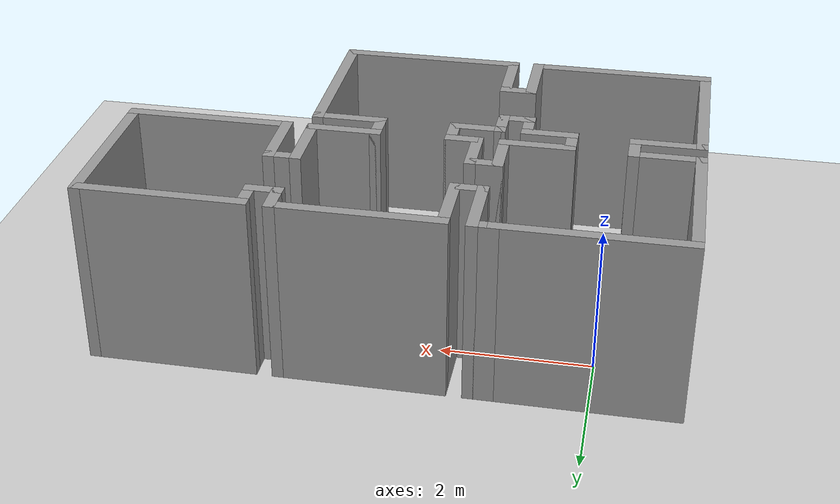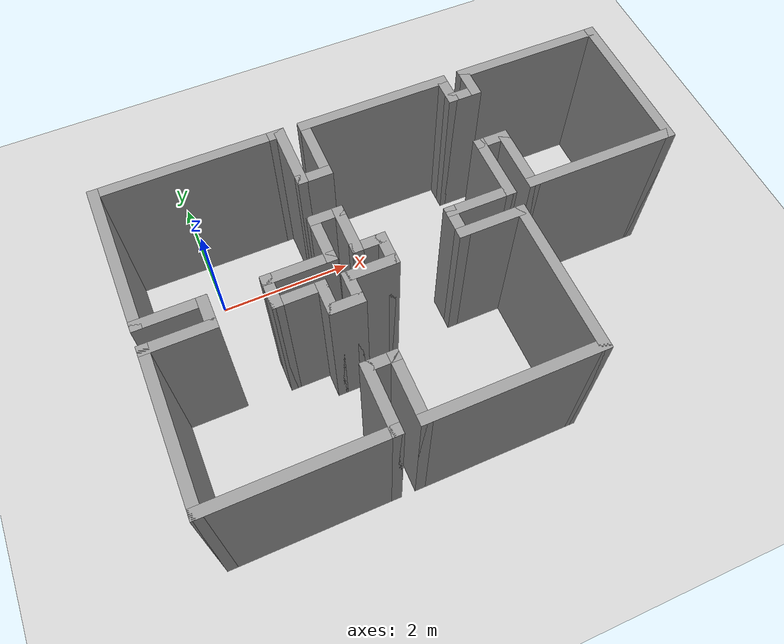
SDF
<sdf version="1.6">
 <world name="default">
  <light name="sun" type="directional">
   <pose>0 0 10 0 -0 0</pose>
   <diffuse>0.8 0.8 0.8 1</diffuse>
   <specular>0.2 0.2 0.2 1</specular>
   <attenuation>
    <range>1000</range>
    <constant>0.9</constant>
    <linear>0.01</linear>
    <quadratic>0.001</quadratic>
   </attenuation>
   <direction>-0.5 0.1 -0.9</direction>
  </light>
  <model name="ground_plane">
   <static>1</static>
   <link name="link">
    <collision name="collision">
     <geometry><plane><normal>0 0 1</normal><size>100 100</size></plane></geometry>
     <surface>
      <contact><collide_bitmask>65535</collide_bitmask></contact>
      <friction><ode><mu>100</mu><mu2>50</mu2></ode></friction>
     </surface>
    </collision>
    <visual name="visual">
     <cast_shadows>0</cast_shadows>
     <geometry><plane><normal>0 0 1</normal><size>100 100</size></plane></geometry>
     <material>
      <script><uri>file://media/materials/scripts/gazebo.material</uri><name>Gazebo/Grey</name></script>
     </material>
    </visual>
   </link>
  </model>
  <gravity>0 0 -9.8</gravity>
  <magnetic_field>6e-06 2.3e-05 -4.2e-05</magnetic_field>
  <atmosphere type="adiabatic"/>
  <physics name="default_physics" default="0" type="ode">
   <max_step_size>0.001</max_step_size>
   <real_time_factor>1</real_time_factor>
   <real_time_update_rate>1000</real_time_update_rate>
  </physics>
  <scene><ambient>0.4 0.4 0.4 1</ambient><background>0.7 0.7 0.7 1</background><shadows>1</shadows></scene>
  <audio><device>default</device></audio>
  <spherical_coordinates>
   <surface_model>EARTH_WGS84</surface_model>
   <latitude_deg>0</latitude_deg>
   <longitude_deg>0</longitude_deg>
   <elevation>0</elevation>
   <heading_deg>0</heading_deg>
  </spherical_coordinates>
  <model name="Rooms5">
   <pose>2.64262 -1.38645 0 0 -0 0</pose>
   <link name="Wall_41">
    <collision name="Wall_41_Collision">
     <geometry><box><size>2.5 0.15 2.5</size></box></geometry>
     <pose>0 0 1.25 0 -0 0</pose>
    </collision>
    <visual name="Wall_41_Visual">
     <pose>0 0 1.25 0 -0 0</pose>
     <geometry><box><size>2.5 0.15 2.5</size></box></geometry>
     <material>
      <script><uri>file://media/materials/scripts/gazebo.material</uri><name>Gazebo/Grey</name></script>
      <ambient>1 1 1 1</ambient>
     </material>
     <meta><layer>0</layer></meta>
    </visual>
    <pose>-2.575 2.275 0 0 -0 3.14159</pose>
   </link>
   <link name="Wall_43">
    <collision name="Wall_43_Collision">
     <geometry><box><size>2.25 0.15 2.5</size></box></geometry>
     <pose>0 0 1.25 0 -0 0</pose>
    </collision>
    <visual name="Wall_43_Visual">
     <pose>0 0 1.25 0 -0 0</pose>
     <geometry><box><size>2.25 0.15 2.5</size></box></geometry>
     <material>
      <script><uri>file://media/materials/scripts/gazebo.material</uri><name>Gazebo/Grey</name></script>
      <ambient>1 1 1 1</ambient>
     </material>
     <meta><layer>0</layer></meta>
    </visual>
    <pose>-3.75 1.225 0 0 -0 -1.5708</pose>
   </link>
   <link name="Wall_45">
    <collision name="Wall_45_Collision">
     <geometry><box><size>1 0.15 2.5</size></box></geometry>
     <pose>0 0 1.25 0 -0 0</pose>
    </collision>
    <visual name="Wall_45_Visual">
     <pose>0 0 1.25 0 -0 0</pose>
     <geometry><box><size>1 0.15 2.5</size></box></geometry>
     <material>
      <script><uri>file://media/materials/scripts/gazebo.material</uri><name>Gazebo/Grey</name></script>
      <ambient>1 1 1 1</ambient>
     </material>
     <meta><layer>0</layer></meta>
    </visual>
    <pose>-3.325 0.175 0 0 -0 0</pose>
   </link>
   <link name="Wall_46">
    <collision name="Wall_46_Collision">
     <geometry><box><size>0.5 0.15 2.5</size></box></geometry>
     <pose>0 0 1.25 0 -0 0</pose>
    </collision>
    <visual name="Wall_46_Visual">
     <pose>0 0 1.25 0 -0 0</pose>
     <geometry><box><size>0.5 0.15 2.5</size></box></geometry>
     <material>
      <script><uri>file://media/materials/scripts/gazebo.material</uri><name>Gazebo/Grey</name></script>
      <ambient>1 1 1 1</ambient>
     </material>
     <meta><layer>0</layer></meta>
    </visual>
    <pose>-2.9 0 0 0 -0 -1.5708</pose>
   </link>
   <link name="Wall_47">
    <collision name="Wall_47_Collision">
     <geometry><box><size>1 0.15 2.5</size></box></geometry>
     <pose>0 0 1.25 0 -0 0</pose>
    </collision>
    <visual name="Wall_47_Visual">
     <pose>0 0 1.25 0 -0 0</pose>
     <geometry><box><size>1 0.15 2.5</size></box></geometry>
     <material>
      <script><uri>file://media/materials/scripts/gazebo.material</uri><name>Gazebo/Grey</name></script>
      <ambient>1 1 1 1</ambient>
     </material>
     <meta><layer>0</layer></meta>
    </visual>
    <pose>-3.325 -0.175 0 0 -0 3.14159</pose>
   </link>
   <link name="Wall_48">
    <collision name="Wall_48_Collision">
     <geometry><box><size>2.25 0.15 2.5</size></box></geometry>
     <pose>0 0 1.25 0 -0 0</pose>
    </collision>
    <visual name="Wall_48_Visual">
     <pose>0 0 1.25 0 -0 0</pose>
     <geometry><box><size>2.25 0.15 2.5</size></box></geometry>
     <material>
      <script><uri>file://media/materials/scripts/gazebo.material</uri><name>Gazebo/Grey</name></script>
      <ambient>1 1 1 1</ambient>
     </material>
     <meta><layer>0</layer></meta>
    </visual>
    <pose>-3.75 -1.225 0 0 -0 -1.5708</pose>
   </link>
   <link name="Wall_49">
    <collision name="Wall_49_Collision">
     <geometry><box><size>2.5 0.15 2.5</size></box></geometry>
     <pose>0 0 1.25 0 -0 0</pose>
    </collision>
    <visual name="Wall_49_Visual">
     <pose>0 0 1.25 0 -0 0</pose>
     <geometry><box><size>2.5 0.15 2.5</size></box></geometry>
     <material>
      <script><uri>file://media/materials/scripts/gazebo.material</uri><name>Gazebo/Grey</name></script>
      <ambient>1 1 1 1</ambient>
     </material>
     <meta><layer>0</layer></meta>
    </visual>
    <pose>-2.575 -2.275 0 0 -0 0</pose>
   </link>
   <link name="Wall_50">
    <collision name="Wall_50_Collision">
     <geometry><box><size>1 0.15 2.5</size></box></geometry>
     <pose>0 0 1.25 0 -0 0</pose>
    </collision>
    <visual name="Wall_50_Visual">
     <pose>0 0 1.25 0 -0 0</pose>
     <geometry><box><size>1 0.15 2.5</size></box></geometry>
     <material>
      <script><uri>file://media/materials/scripts/gazebo.material</uri><name>Gazebo/Grey</name></script>
      <ambient>1 1 1 1</ambient>
     </material>
     <meta><layer>0</layer></meta>
    </visual>
    <pose>-1.4 -1.85 0 0 -0 1.5708</pose>
   </link>
   <link name="Wall_51">
    <collision name="Wall_51_Collision">
     <geometry><box><size>0.5 0.15 2.5</size></box></geometry>
     <pose>0 0 1.25 0 -0 0</pose>
    </collision>
    <visual name="Wall_51_Visual">
     <pose>0 0 1.25 0 -0 0</pose>
     <geometry><box><size>0.5 0.15 2.5</size></box></geometry>
     <material>
      <script><uri>file://media/materials/scripts/gazebo.material</uri><name>Gazebo/Grey</name></script>
      <ambient>1 1 1 1</ambient>
     </material>
     <meta><layer>0</layer></meta>
    </visual>
    <pose>-1.225 -1.425 0 0 -0 0</pose>
   </link>
   <link name="Wall_52">
    <collision name="Wall_52_Collision">
     <geometry><box><size>1 0.15 2.5</size></box></geometry>
     <pose>0 0 1.25 0 -0 0</pose>
    </collision>
    <visual name="Wall_52_Visual">
     <pose>0 0 1.25 0 -0 0</pose>
     <geometry><box><size>1 0.15 2.5</size></box></geometry>
     <material>
      <script><uri>file://media/materials/scripts/gazebo.material</uri><name>Gazebo/Grey</name></script>
      <ambient>1 1 1 1</ambient>
     </material>
     <meta><layer>0</layer></meta>
    </visual>
    <pose>-1.05 -1.85 0 0 -0 -1.5708</pose>
   </link>
   <link name="Wall_53">
    <collision name="Wall_53_Collision">
     <geometry><box><size>2.5 0.15 2.5</size></box></geometry>
     <pose>0 0 1.25 0 -0 0</pose>
    </collision>
    <visual name="Wall_53_Visual">
     <pose>0 0 1.25 0 -0 0</pose>
     <geometry><box><size>2.5 0.15 2.5</size></box></geometry>
     <material>
      <script><uri>file://media/materials/scripts/gazebo.material</uri><name>Gazebo/Grey</name></script>
      <ambient>1 1 1 1</ambient>
     </material>
     <meta><layer>0</layer></meta>
    </visual>
    <pose>0.125 -2.275 0 0 -0 0</pose>
   </link>
   <link name="Wall_54">
    <collision name="Wall_54_Collision">
     <geometry><box><size>2.25 0.15 2.5</size></box></geometry>
     <pose>0 0 1.25 0 -0 0</pose>
    </collision>
    <visual name="Wall_54_Visual">
     <pose>0 0 1.25 0 -0 0</pose>
     <geometry><box><size>2.25 0.15 2.5</size></box></geometry>
     <material>
      <script><uri>file://media/materials/scripts/gazebo.material</uri><name>Gazebo/Grey</name></script>
      <ambient>1 1 1 1</ambient>
     </material>
     <meta><layer>0</layer></meta>
    </visual>
    <pose>1.3 -1.225 0 0 -0 1.5708</pose>
   </link>
   <link name="Wall_55">
    <collision name="Wall_55_Collision">
     <geometry><box><size>1 0.15 2.5</size></box></geometry>
     <pose>0 0 1.25 0 -0 0</pose>
    </collision>
    <visual name="Wall_55_Visual">
     <pose>0 0 1.25 0 -0 0</pose>
     <geometry><box><size>1 0.15 2.5</size></box></geometry>
     <material>
      <script><uri>file://media/materials/scripts/gazebo.material</uri><name>Gazebo/Grey</name></script>
      <ambient>1 1 1 1</ambient>
     </material>
     <meta><layer>0</layer></meta>
    </visual>
    <pose>0.875 -0.175 0 0 -0 3.14159</pose>
   </link>
   <link name="Wall_56">
    <collision name="Wall_56_Collision">
     <geometry><box><size>0.5 0.15 2.5</size></box></geometry>
     <pose>0 0 1.25 0 -0 0</pose>
    </collision>
    <visual name="Wall_56_Visual">
     <pose>0 0 1.25 0 -0 0</pose>
     <geometry><box><size>0.5 0.15 2.5</size></box></geometry>
     <material>
      <script><uri>file://media/materials/scripts/gazebo.material</uri><name>Gazebo/Grey</name></script>
      <ambient>1 1 1 1</ambient>
     </material>
     <meta><layer>0</layer></meta>
    </visual>
    <pose>0.45 0 0 0 -0 1.5708</pose>
   </link>
   <link name="Wall_57">
    <collision name="Wall_57_Collision">
     <geometry><box><size>1 0.15 2.5</size></box></geometry>
     <pose>0 0 1.25 0 -0 0</pose>
    </collision>
    <visual name="Wall_57_Visual">
     <pose>0 0 1.25 0 -0 0</pose>
     <geometry><box><size>1 0.15 2.5</size></box></geometry>
     <material>
      <script><uri>file://media/materials/scripts/gazebo.material</uri><name>Gazebo/Grey</name></script>
      <ambient>1 1 1 1</ambient>
     </material>
     <meta><layer>0</layer></meta>
    </visual>
    <pose>0.875 0.175 0 0 -0 0</pose>
   </link>
   <link name="Wall_58">
    <collision name="Wall_58_Collision">
     <geometry><box><size>1 0.15 2.5</size></box></geometry>
     <pose>0 0 1.25 0 -0 0</pose>
    </collision>
    <visual name="Wall_58_Visual">
     <pose>0 0 1.25 0 -0 0</pose>
     <geometry><box><size>1 0.15 2.5</size></box></geometry>
     <material>
      <script><uri>file://media/materials/scripts/gazebo.material</uri><name>Gazebo/Grey</name></script>
      <ambient>1 1 1 1</ambient>
     </material>
     <meta><layer>0</layer></meta>
    </visual>
    <pose>1.3 0.6 0 0 -0 1.5708</pose>
   </link>
   <link name="Wall_59">
    <collision name="Wall_59_Collision">
     <geometry><box><size>0.5 0.15 2.5</size></box></geometry>
     <pose>0 0 1.25 0 -0 0</pose>
    </collision>
    <visual name="Wall_59_Visual">
     <pose>0 0 1.25 0 -0 0</pose>
     <geometry><box><size>0.5 0.15 2.5</size></box></geometry>
     <material>
      <script><uri>file://media/materials/scripts/gazebo.material</uri><name>Gazebo/Grey</name></script>
      <ambient>1 1 1 1</ambient>
     </material>
     <meta><layer>0</layer></meta>
    </visual>
    <pose>1.475 1.025 0 0 -0 0</pose>
   </link>
   <link name="Wall_60">
    <collision name="Wall_60_Collision">
     <geometry><box><size>1 0.15 2.5</size></box></geometry>
     <pose>0 0 1.25 0 -0 0</pose>
    </collision>
    <visual name="Wall_60_Visual">
     <pose>0 0 1.25 0 -0 0</pose>
     <geometry><box><size>1 0.15 2.5</size></box></geometry>
     <material>
      <script><uri>file://media/materials/scripts/gazebo.material</uri><name>Gazebo/Grey</name></script>
      <ambient>1 1 1 1</ambient>
     </material>
     <meta><layer>0</layer></meta>
    </visual>
    <pose>1.65 0.6 0 0 -0 -1.5708</pose>
   </link>
   <link name="Wall_61">
    <collision name="Wall_61_Collision">
     <geometry><box><size>2.25 0.15 2.5</size></box></geometry>
     <pose>0 0 1.25 0 -0 0</pose>
    </collision>
    <visual name="Wall_61_Visual">
     <pose>0 0 1.25 0 -0 0</pose>
     <geometry><box><size>2.25 0.15 2.5</size></box></geometry>
     <material>
      <script><uri>file://media/materials/scripts/gazebo.material</uri><name>Gazebo/Grey</name></script>
      <ambient>1 1 1 1</ambient>
     </material>
     <meta><layer>0</layer></meta>
    </visual>
    <pose>2.7 0.175 0 0 -0 0</pose>
   </link>
   <link name="Wall_62">
    <collision name="Wall_62_Collision">
     <geometry><box><size>2.25 0.15 2.5</size></box></geometry>
     <pose>0 0 1.25 0 -0 0</pose>
    </collision>
    <visual name="Wall_62_Visual">
     <pose>0 0 1.25 0 -0 0</pose>
     <geometry><box><size>2.25 0.15 2.5</size></box></geometry>
     <material>
      <script><uri>file://media/materials/scripts/gazebo.material</uri><name>Gazebo/Grey</name></script>
      <ambient>1 1 1 1</ambient>
     </material>
     <meta><layer>0</layer></meta>
    </visual>
    <pose>3.75 1.225 0 0 -0 1.5708</pose>
   </link>
   <link name="Wall_63">
    <collision name="Wall_63_Collision">
     <geometry><box><size>2.25 0.15 2.5</size></box></geometry>
     <pose>0 0 1.25 0 -0 0</pose>
    </collision>
    <visual name="Wall_63_Visual">
     <pose>0 0 1.25 0 -0 0</pose>
     <geometry><box><size>2.25 0.15 2.5</size></box></geometry>
     <material>
      <script><uri>file://media/materials/scripts/gazebo.material</uri><name>Gazebo/Grey</name></script>
      <ambient>1 1 1 1</ambient>
     </material>
     <meta><layer>0</layer></meta>
    </visual>
    <pose>2.7 2.275 0 0 -0 3.14159</pose>
   </link>
   <link name="Wall_64">
    <collision name="Wall_64_Collision">
     <geometry><box><size>0.5 0.15 2.5</size></box></geometry>
     <pose>0 0 1.25 0 -0 0</pose>
    </collision>
    <visual name="Wall_64_Visual">
     <pose>0 0 1.25 0 -0 0</pose>
     <geometry><box><size>0.5 0.15 2.5</size></box></geometry>
     <material>
      <script><uri>file://media/materials/scripts/gazebo.material</uri><name>Gazebo/Grey</name></script>
      <ambient>1 1 1 1</ambient>
     </material>
     <meta><layer>0</layer></meta>
    </visual>
    <pose>1.65 2.1 0 0 -0 -1.5708</pose>
   </link>
   <link name="Wall_65">
    <collision name="Wall_65_Collision">
     <geometry><box><size>0.5 0.15 2.5</size></box></geometry>
     <pose>0 0 1.25 0 -0 0</pose>
    </collision>
    <visual name="Wall_65_Visual">
     <pose>0 0 1.25 0 -0 0</pose>
     <geometry><box><size>0.5 0.15 2.5</size></box></geometry>
     <material>
      <script><uri>file://media/materials/scripts/gazebo.material</uri><name>Gazebo/Grey</name></script>
      <ambient>1 1 1 1</ambient>
     </material>
     <meta><layer>0</layer></meta>
    </visual>
    <pose>1.475 1.925 0 0 -0 3.14159</pose>
   </link>
   <link name="Wall_66">
    <collision name="Wall_66_Collision">
     <geometry><box><size>0.5 0.15 2.5</size></box></geometry>
     <pose>0 0 1.25 0 -0 0</pose>
    </collision>
    <visual name="Wall_66_Visual">
     <pose>0 0 1.25 0 -0 0</pose>
     <geometry><box><size>0.5 0.15 2.5</size></box></geometry>
     <material>
      <script><uri>file://media/materials/scripts/gazebo.material</uri><name>Gazebo/Grey</name></script>
      <ambient>1 1 1 1</ambient>
     </material>
     <meta><layer>0</layer></meta>
    </visual>
    <pose>1.3 2.1 0 0 -0 1.5708</pose>
   </link>
   <link name="Wall_67">
    <collision name="Wall_67_Collision">
     <geometry><box><size>2.25 0.15 2.5</size></box></geometry>
     <pose>0 0 1.25 0 -0 0</pose>
    </collision>
    <visual name="Wall_67_Visual">
     <pose>0 0 1.25 0 -0 0</pose>
     <geometry><box><size>2.25 0.15 2.5</size></box></geometry>
     <material>
      <script><uri>file://media/materials/scripts/gazebo.material</uri><name>Gazebo/Grey</name></script>
      <ambient>1 1 1 1</ambient>
     </material>
     <meta><layer>0</layer></meta>
    </visual>
    <pose>0.25 2.275 0 0 -0 3.14159</pose>
   </link>
   <link name="Wall_68">
    <collision name="Wall_68_Collision">
     <geometry><box><size>1 0.15 2.5</size></box></geometry>
     <pose>0 0 1.25 0 -0 0</pose>
    </collision>
    <visual name="Wall_68_Visual">
     <pose>0 0 1.25 0 -0 0</pose>
     <geometry><box><size>1 0.15 2.5</size></box></geometry>
     <material>
      <script><uri>file://media/materials/scripts/gazebo.material</uri><name>Gazebo/Grey</name></script>
      <ambient>1 1 1 1</ambient>
     </material>
     <meta><layer>0</layer></meta>
    </visual>
    <pose>-0.8 1.85 0 0 -0 -1.5708</pose>
   </link>
   <link name="Wall_69">
    <collision name="Wall_69_Collision">
     <geometry><box><size>0.5 0.15 2.5</size></box></geometry>
     <pose>0 0 1.25 0 -0 0</pose>
    </collision>
    <visual name="Wall_69_Visual">
     <pose>0 0 1.25 0 -0 0</pose>
     <geometry><box><size>0.5 0.15 2.5</size></box></geometry>
     <material>
      <script><uri>file://media/materials/scripts/gazebo.material</uri><name>Gazebo/Grey</name></script>
      <ambient>1 1 1 1</ambient>
     </material>
     <meta><layer>0</layer></meta>
    </visual>
    <pose>-0.975 1.425 0 0 -0 3.14159</pose>
   </link>
   <link name="Wall_70">
    <collision name="Wall_70_Collision">
     <geometry><box><size>1 0.15 2.5</size></box></geometry>
     <pose>0 0 1.25 0 -0 0</pose>
    </collision>
    <visual name="Wall_70_Visual">
     <pose>0 0 1.25 0 -0 0</pose>
     <geometry><box><size>1 0.15 2.5</size></box></geometry>
     <material>
      <script><uri>file://media/materials/scripts/gazebo.material</uri><name>Gazebo/Grey</name></script>
      <ambient>1 1 1 1</ambient>
     </material>
     <meta><layer>0</layer></meta>
    </visual>
    <pose>-1.15 1.85 0 0 -0 1.5708</pose>
   </link>
   <link name="Wall_71">
    <collision name="Wall_71_Collision">
     <geometry><box><size>0.4 0.15 2.5</size></box></geometry>
     <pose>0 0 1.25 0 -0 0</pose>
    </collision>
    <visual name="Wall_71_Visual">
     <pose>0 0 1.25 0 -0 0</pose>
     <geometry><box><size>0.4 0.15 2.5</size></box></geometry>
     <material>
      <script><uri>file://media/materials/scripts/gazebo.material</uri><name>Gazebo/Grey</name></script>
      <ambient>1 1 1 1</ambient>
     </material>
     <meta><layer>0</layer></meta>
    </visual>
    <pose>-1.275 2.275 0 0 -0 3.14159</pose>
   </link>
   <link name="Wall_73">
    <collision name="Wall_73_Collision">
     <geometry><box><size>0.5 0.15 2.5</size></box></geometry>
     <pose>0 0 1.25 0 -0 0</pose>
    </collision>
    <visual name="Wall_73_Visual">
     <pose>0 0 1.25 0 -0 0</pose>
     <geometry><box><size>0.5 0.15 2.5</size></box></geometry>
     <material>
      <script><uri>file://media/materials/scripts/gazebo.material</uri><name>Gazebo/Grey</name></script>
      <ambient>1 1 1 1</ambient>
     </material>
     <meta><layer>0</layer></meta>
    </visual>
    <pose>-2.08861 -0.025226 0 0 -0 -1.5708</pose>
   </link>
   <link name="Wall_74">
    <collision name="Wall_74_Collision">
     <geometry><box><size>0.75 0.15 2.5</size></box></geometry>
     <pose>0 0 1.25 0 -0 0</pose>
    </collision>
    <visual name="Wall_74_Visual">
     <pose>0 0 1.25 0 -0 0</pose>
     <geometry><box><size>0.75 0.15 2.5</size></box></geometry>
     <material>
      <script><uri>file://media/materials/scripts/gazebo.material</uri><name>Gazebo/Grey</name></script>
      <ambient>1 1 1 1</ambient>
     </material>
     <meta><layer>0</layer></meta>
    </visual>
    <pose>-1.78861 -0.200226 0 0 -0 0</pose>
   </link>
   <link name="Wall_75">
    <collision name="Wall_75_Collision">
     <geometry><box><size>0.5 0.15 2.5</size></box></geometry>
     <pose>0 0 1.25 0 -0 0</pose>
    </collision>
    <visual name="Wall_75_Visual">
     <pose>0 0 1.25 0 -0 0</pose>
     <geometry><box><size>0.5 0.15 2.5</size></box></geometry>
     <material>
      <script><uri>file://media/materials/scripts/gazebo.material</uri><name>Gazebo/Grey</name></script>
      <ambient>1 1 1 1</ambient>
     </material>
     <meta><layer>0</layer></meta>
    </visual>
    <pose>-1.48861 -0.375226 0 0 -0 -1.5708</pose>
   </link>
   <link name="Wall_76">
    <collision name="Wall_76_Collision">
     <geometry><box><size>0.5 0.15 2.5</size></box></geometry>
     <pose>0 0 1.25 0 -0 0</pose>
    </collision>
    <visual name="Wall_76_Visual">
     <pose>0 0 1.25 0 -0 0</pose>
     <geometry><box><size>0.5 0.15 2.5</size></box></geometry>
     <material>
      <script><uri>file://media/materials/scripts/gazebo.material</uri><name>Gazebo/Grey</name></script>
      <ambient>1 1 1 1</ambient>
     </material>
     <meta><layer>0</layer></meta>
    </visual>
    <pose>-1.31361 -0.550226 0 0 -0 0</pose>
   </link>
   <link name="Wall_77">
    <collision name="Wall_77_Collision">
     <geometry><box><size>0.5 0.15 2.5</size></box></geometry>
     <pose>0 0 1.25 0 -0 0</pose>
    </collision>
    <visual name="Wall_77_Visual">
     <pose>0 0 1.25 0 -0 0</pose>
     <geometry><box><size>0.5 0.15 2.5</size></box></geometry>
     <material>
      <script><uri>file://media/materials/scripts/gazebo.material</uri><name>Gazebo/Grey</name></script>
      <ambient>1 1 1 1</ambient>
     </material>
     <meta><layer>0</layer></meta>
    </visual>
    <pose>-1.13861 -0.375226 0 0 -0 1.5708</pose>
   </link>
   <link name="Wall_78">
    <collision name="Wall_78_Collision">
     <geometry><box><size>0.75 0.15 2.5</size></box></geometry>
     <pose>0 0 1.25 0 -0 0</pose>
    </collision>
    <visual name="Wall_78_Visual">
     <pose>0 0 1.25 0 -0 0</pose>
     <geometry><box><size>0.75 0.15 2.5</size></box></geometry>
     <material>
      <script><uri>file://media/materials/scripts/gazebo.material</uri><name>Gazebo/Grey</name></script>
      <ambient>1 1 1 1</ambient>
     </material>
     <meta><layer>0</layer></meta>
    </visual>
    <pose>-0.838608 -0.200226 0 0 -0 0</pose>
   </link>
   <link name="Wall_79">
    <collision name="Wall_79_Collision">
     <geometry><box><size>0.5 0.15 2.5</size></box></geometry>
     <pose>0 0 1.25 0 -0 0</pose>
    </collision>
    <visual name="Wall_79_Visual">
     <pose>0 0 1.25 0 -0 0</pose>
     <geometry><box><size>0.5 0.15 2.5</size></box></geometry>
     <material>
      <script><uri>file://media/materials/scripts/gazebo.material</uri><name>Gazebo/Grey</name></script>
      <ambient>1 1 1 1</ambient>
     </material>
     <meta><layer>0</layer></meta>
    </visual>
    <pose>-0.538608 -0.025226 0 0 -0 1.5708</pose>
   </link>
   <link name="Wall_80">
    <collision name="Wall_80_Collision">
     <geometry><box><size>0.5 0.15 2.5</size></box></geometry>
     <pose>0 0 1.25 0 -0 0</pose>
    </collision>
    <visual name="Wall_80_Visual">
     <pose>0 0 1.25 0 -0 0</pose>
     <geometry><box><size>0.5 0.15 2.5</size></box></geometry>
     <material>
      <script><uri>file://media/materials/scripts/gazebo.material</uri><name>Gazebo/Grey</name></script>
      <ambient>1 1 1 1</ambient>
     </material>
     <meta><layer>0</layer></meta>
    </visual>
    <pose>-0.713608 0.149774 0 0 -0 3.14159</pose>
   </link>
   <link name="Wall_81">
    <collision name="Wall_81_Collision">
     <geometry><box><size>0.75 0.15 2.5</size></box></geometry>
     <pose>0 0 1.25 0 -0 0</pose>
    </collision>
    <visual name="Wall_81_Visual">
     <pose>0 0 1.25 0 -0 0</pose>
     <geometry><box><size>0.75 0.15 2.5</size></box></geometry>
     <material>
      <script><uri>file://media/materials/scripts/gazebo.material</uri><name>Gazebo/Grey</name></script>
      <ambient>1 1 1 1</ambient>
     </material>
     <meta><layer>0</layer></meta>
    </visual>
    <pose>-0.888608 0.449774 0 0 -0 1.5708</pose>
   </link>
   <link name="Wall_82">
    <collision name="Wall_82_Collision">
     <geometry><box><size>0.5 0.15 2.5</size></box></geometry>
     <pose>0 0 1.25 0 -0 0</pose>
    </collision>
    <visual name="Wall_82_Visual">
     <pose>0 0 1.25 0 -0 0</pose>
     <geometry><box><size>0.5 0.15 2.5</size></box></geometry>
     <material>
      <script><uri>file://media/materials/scripts/gazebo.material</uri><name>Gazebo/Grey</name></script>
      <ambient>1 1 1 1</ambient>
     </material>
     <meta><layer>0</layer></meta>
    </visual>
    <pose>-1.06361 0.749774 0 0 -0 3.14159</pose>
   </link>
   <link name="Wall_83">
    <collision name="Wall_83_Collision">
     <geometry><box><size>0.75 0.15 2.5</size></box></geometry>
     <pose>0 0 1.25 0 -0 0</pose>
    </collision>
    <visual name="Wall_83_Visual">
     <pose>0 0 1.25 0 -0 0</pose>
     <geometry><box><size>0.75 0.15 2.5</size></box></geometry>
     <material>
      <script><uri>file://media/materials/scripts/gazebo.material</uri><name>Gazebo/Grey</name></script>
      <ambient>1 1 1 1</ambient>
     </material>
     <meta><layer>0</layer></meta>
    </visual>
    <pose>-1.23861 0.449774 0 0 -0 -1.5708</pose>
   </link>
   <link name="Wall_84">
    <collision name="Wall_84_Collision">
     <geometry><box><size>1 0.15 2.5</size></box></geometry>
     <pose>0 0 1.25 0 -0 0</pose>
    </collision>
    <visual name="Wall_84_Visual">
     <pose>0 0 1.25 0 -0 0</pose>
     <geometry><box><size>1 0.15 2.5</size></box></geometry>
     <material>
      <script><uri>file://media/materials/scripts/gazebo.material</uri><name>Gazebo/Grey</name></script>
      <ambient>1 1 1 1</ambient>
     </material>
     <meta><layer>0</layer></meta>
    </visual>
    <pose>-1.66361 0.149774 0 0 -0 3.14159</pose>
   </link>
   <static>1</static>
  </model>
 </world>
</sdf>
